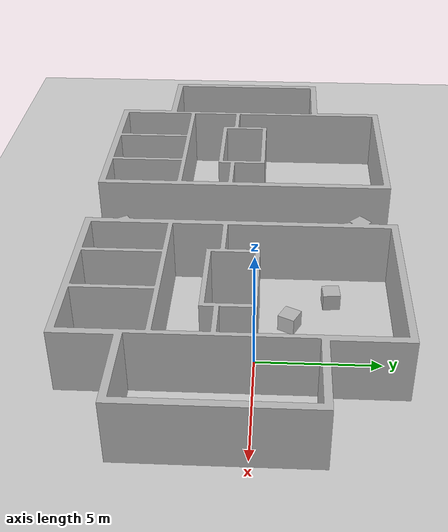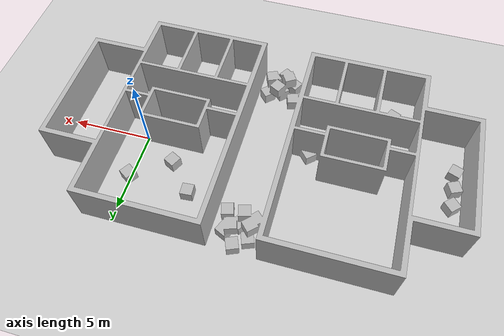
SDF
<sdf version='1.9'>
  <world name='empty'>
    <physics name='1ms' type='ignored'>
      <max_step_size>0.001</max_step_size>
      <real_time_factor>1</real_time_factor>
      <real_time_update_rate>1000</real_time_update_rate>
    </physics>
    <plugin name='gz::sim::systems::Physics' filename='ignition-gazebo-physics-system'/>
    <plugin name='gz::sim::systems::UserCommands' filename='ignition-gazebo-user-commands-system'/>
    <plugin name='gz::sim::systems::SceneBroadcaster' filename='ignition-gazebo-scene-broadcaster-system'/>
    <plugin name='gz::sim::systems::Contact' filename='ignition-gazebo-contact-system'/>
    <plugin
    filename="ignition-gazebo-navsat-system"
    name="ignition::gazebo::systems::NavSat">
  </plugin>
  <plugin
  filename="ignition-gazebo-magnetometer-system"
  name="ignition::gazebo::systems::Magnetometer">
</plugin>
  <spherical_coordinates>
    <surface_model>EARTH_WGS84</surface_model>
    <world_frame_orientation>ENU</world_frame_orientation>
    <latitude_deg>0</latitude_deg>
    <longitude_deg>0</longitude_deg>
    <elevation>0</elevation>
    <heading_deg>0</heading_deg>
  </spherical_coordinates>
    <gravity>0 0 -9.8</gravity>
    <magnetic_field>0 1 0</magnetic_field>
    <atmosphere type='adiabatic'/>
    <scene>
      <ambient>0.4 0.4 0.4 1</ambient>
      <background>0.7 0.7 0.7 1</background>
      <shadows>true</shadows>
    </scene>
    <model name='World'>
    <static>true</static>
    <link name='link'>
      <pose>0 0 0 0 0 0</pose>
      <collision name='collision'>
        <geometry>
          <mesh>
            <uri>world.obj</uri>
          </mesh>
        </geometry>
      </collision>
      <visual name='visual'>
        <geometry>
          <mesh>
            <uri>world.obj</uri>
          </mesh>
        </geometry>
      </visual>
    </link>
  </model>
    <model name='ground_plane'>
      <static>true</static>
      <link name='link'>
        <collision name='collision'>
          <geometry>
            <plane>
              <normal>0 0 1</normal>
              <size>100 100</size>
            </plane>
          </geometry>
          <surface>
            <friction>
              <ode/>
            </friction>
            <bounce/>
            <contact/>
          </surface>
        </collision>
        <visual name='visual'>
          <geometry>
            <plane>
              <normal>0 0 1</normal>
              <size>100 100</size>
            </plane>
          </geometry>
          <material>
            <ambient>0.8 0.8 0.8 1</ambient>
            <diffuse>0.8 0.8 0.8 1</diffuse>
            <specular>0.8 0.8 0.8 1</specular>
          </material>
        </visual>
        <pose>0 0 0 0 -0 0</pose>
        <inertial>
          <pose>0 0 0 0 -0 0</pose>
          <mass>1</mass>
          <inertia>
            <ixx>1</ixx>
            <ixy>0</ixy>
            <ixz>0</ixz>
            <iyy>1</iyy>
            <iyz>0</iyz>
            <izz>1</izz>
          </inertia>
        </inertial>
        <enable_wind>false</enable_wind>
      </link>
      <pose>0 0 0 0 -0 0</pose>
      <self_collide>false</self_collide>
    </model>
    <light name='sun' type='directional'>
      <pose>0 0 10 0 -0 0</pose>
      <cast_shadows>true</cast_shadows>
      <intensity>1</intensity>
      <direction>-0.5 0.1 -0.9</direction>
      <diffuse>0.8 0.8 0.8 1</diffuse>
      <specular>0.2 0.2 0.2 1</specular>
      <attenuation>
        <range>1000</range>
        <linear>0.01</linear>
        <constant>0.90000000000000002</constant>
        <quadratic>0.001</quadratic>
      </attenuation>
      <spot>
        <inner_angle>0</inner_angle>
        <outer_angle>0</outer_angle>
        <falloff>0</falloff>
      </spot>
    </light>
  </world>
</sdf>
